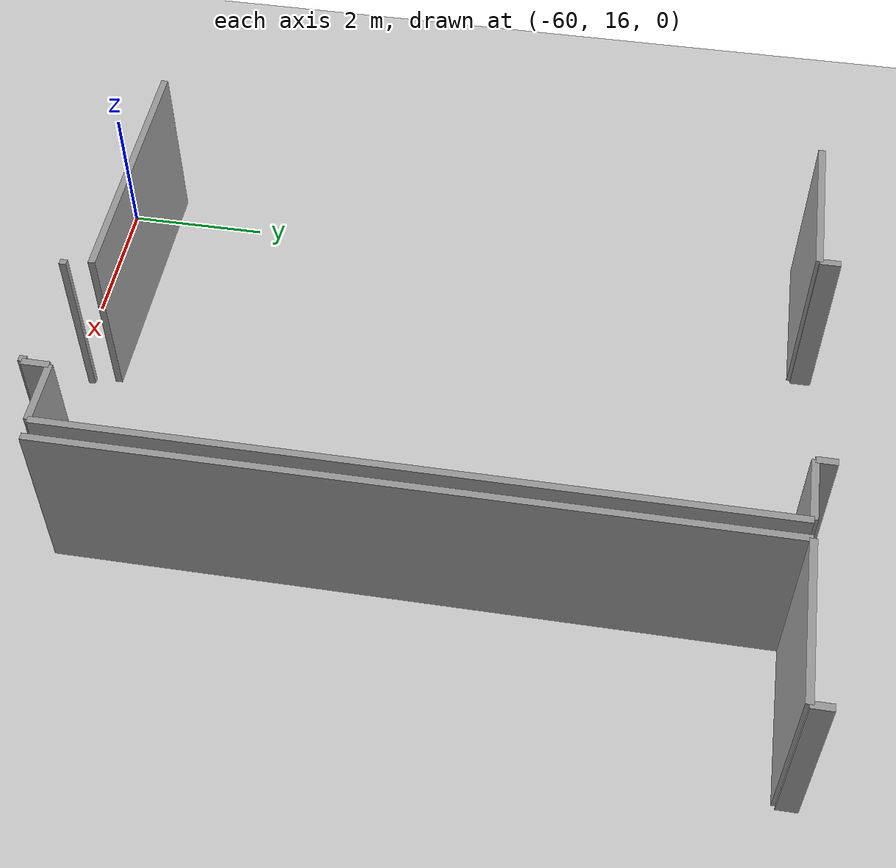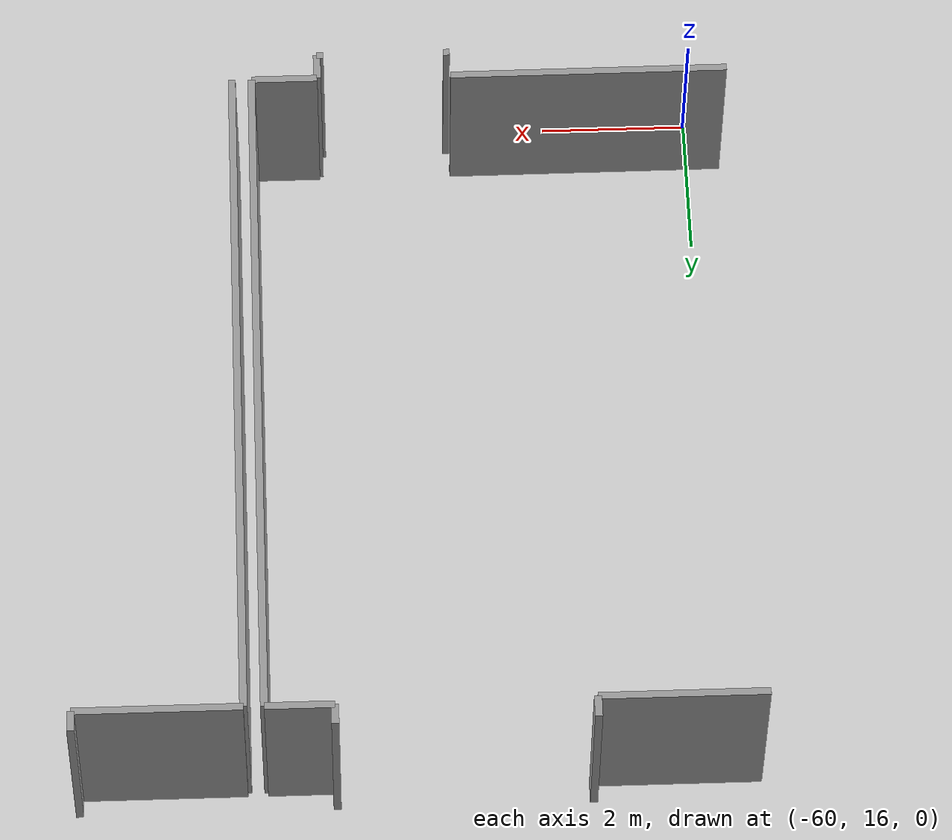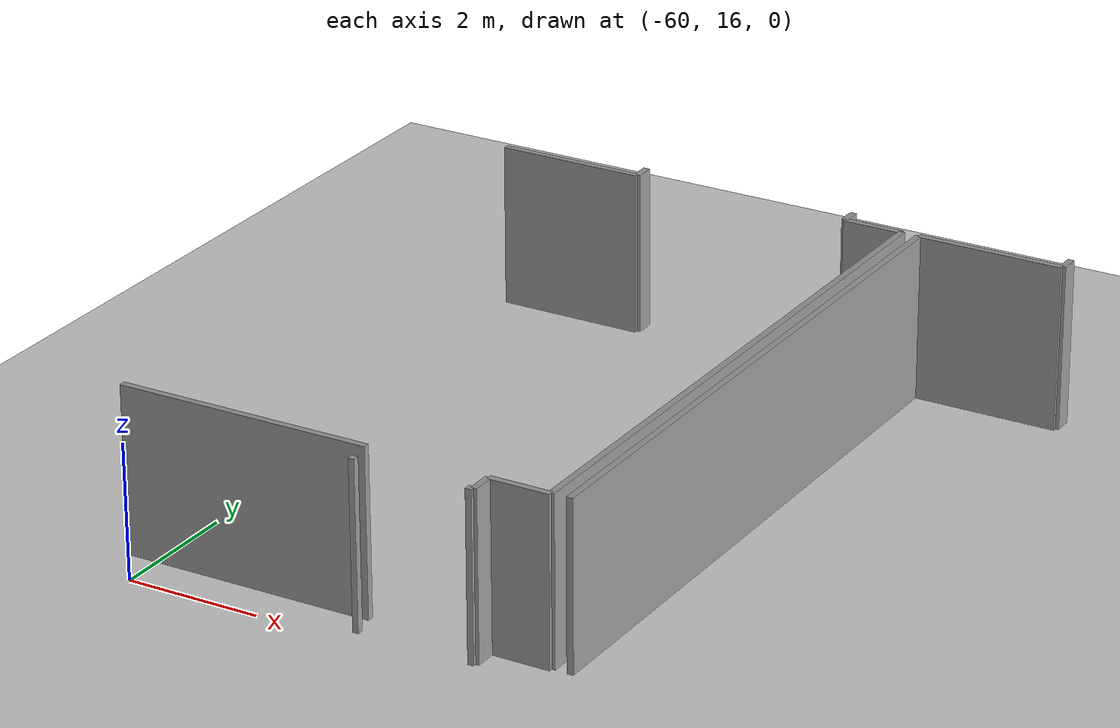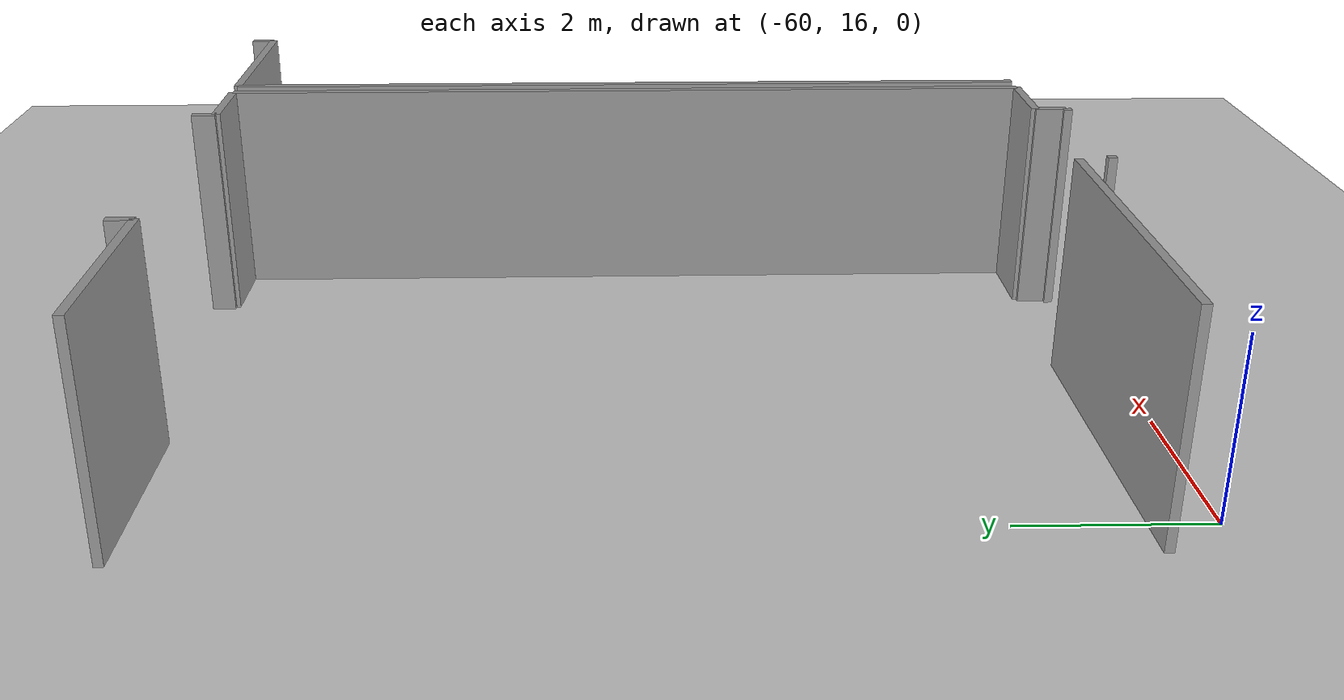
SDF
<sdf version="1.6">
 <world name="default">
  <model name="ground_plane">
   <static>1</static>
   <link name="link">
    <collision name="collision">
     <geometry><plane><normal>0 0 1</normal><size>100 100</size></plane></geometry>
     <surface><friction><ode><mu>100</mu><mu2>50</mu2></ode></friction></surface>
    </collision>
    <visual name="visual">
     <cast_shadows>0</cast_shadows>
     <geometry><plane><normal>0 0 1</normal><size>100 100</size></plane></geometry>
     <material>
      <script><uri>file://media/materials/scripts/gazebo.material</uri><name>Gazebo/Grey</name></script>
     </material>
    </visual>
   </link>
  </model>
  <model name="0510032192_A_40_1_103">
   <static>1</static>
   <link name="Wall_1">
    <collision name="Wall_1_Collision">
     <geometry><box><size>2.24219633352 0.1 2.5</size></box></geometry>
     <pose>1.12109816676 0 1.25 0 0 0</pose>
    </collision>
    <visual name="Wall_1_Visual">
     <pose>1.12109816676 0 1.25 0 0 0</pose>
     <geometry><box><size>2.24219633352 0.1 2.5</size></box></geometry>
     <material>
      <script><uri>file://media/materials/scripts/gazebo.material</uri><name>Gazebo/Grey</name></script>
      <ambient>1 1 1 1</ambient>
     </material>
    </visual>
    <pose>7.03149416234 -0.318879981706 0 0 0 0.0</pose>
   </link>
   <link name="Wall_2">
    <collision name="Wall_2_Collision">
     <geometry><box><size>0.290549210423 0.1 2.5</size></box></geometry>
     <pose>0.145274605211 0 1.25 0 0 0</pose>
    </collision>
    <visual name="Wall_2_Visual">
     <pose>0.145274605211 0 1.25 0 0 0</pose>
     <geometry><box><size>0.290549210423 0.1 2.5</size></box></geometry>
     <material>
      <script><uri>file://media/materials/scripts/gazebo.material</uri><name>Gazebo/Grey</name></script>
      <ambient>1 1 1 1</ambient>
     </material>
    </visual>
    <pose>9.27369049585 -0.318879981706 0 0 0 1.57079632679</pose>
   </link>
   <link name="Wall_3">
    <collision name="Wall_3_Collision">
     <geometry><box><size>0.278861179221 0.1 2.5</size></box></geometry>
     <pose>0.13943058961 0 1.25 0 0 0</pose>
    </collision>
    <visual name="Wall_3_Visual">
     <pose>0.13943058961 0 1.25 0 0 0</pose>
     <geometry><box><size>0.278861179221 0.1 2.5</size></box></geometry>
     <material>
      <script><uri>file://media/materials/scripts/gazebo.material</uri><name>Gazebo/Grey</name></script>
      <ambient>1 1 1 1</ambient>
     </material>
    </visual>
    <pose>12.6765591452 -0.028330771283 0 0 0 -1.57079632679</pose>
   </link>
   <link name="Wall_4">
    <collision name="Wall_4_Collision">
     <geometry><box><size>0.913826178649 0.1 2.5</size></box></geometry>
     <pose>0.456913089325 0 1.25 0 0 0</pose>
    </collision>
    <visual name="Wall_4_Visual">
     <pose>0.456913089325 0 1.25 0 0 0</pose>
     <geometry><box><size>0.913826178649 0.1 2.5</size></box></geometry>
     <material>
      <script><uri>file://media/materials/scripts/gazebo.material</uri><name>Gazebo/Grey</name></script>
      <ambient>1 1 1 1</ambient>
     </material>
    </visual>
    <pose>12.6765591452 -0.307191950504 0 0 0 0.0</pose>
   </link>
   <link name="Wall_5">
    <collision name="Wall_5_Collision">
     <geometry><box><size>9.72431491621 0.1 2.5</size></box></geometry>
     <pose>4.86215745811 0 1.25 0 0 0</pose>
    </collision>
    <visual name="Wall_5_Visual">
     <pose>4.86215745811 0 1.25 0 0 0</pose>
     <geometry><box><size>9.72431491621 0.1 2.5</size></box></geometry>
     <material>
      <script><uri>file://media/materials/scripts/gazebo.material</uri><name>Gazebo/Grey</name></script>
      <ambient>1 1 1 1</ambient>
     </material>
    </visual>
    <pose>13.5903853239 -0.307191950504 0 0 0 -1.57079632679</pose>
   </link>
   <link name="Wall_6">
    <collision name="Wall_6_Collision">
     <geometry><box><size>0.908744425953 0.1 2.5</size></box></geometry>
     <pose>0.454372212976 0 1.25 0 0 0</pose>
    </collision>
    <visual name="Wall_6_Visual">
     <pose>0.454372212976 0 1.25 0 0 0</pose>
     <geometry><box><size>0.908744425953 0.1 2.5</size></box></geometry>
     <material>
      <script><uri>file://media/materials/scripts/gazebo.material</uri><name>Gazebo/Grey</name></script>
      <ambient>1 1 1 1</ambient>
     </material>
    </visual>
    <pose>13.5903853239 -10.0315068667 0 0 0 3.14159265359</pose>
   </link>
   <link name="Wall_7">
    <collision name="Wall_7_Collision">
     <geometry><box><size>0.373762910828 0.1 2.5</size></box></geometry>
     <pose>0.186881455414 0 1.25 0 0 0</pose>
    </collision>
    <visual name="Wall_7_Visual">
     <pose>0.186881455414 0 1.25 0 0 0</pose>
     <geometry><box><size>0.373762910828 0.1 2.5</size></box></geometry>
     <material>
      <script><uri>file://media/materials/scripts/gazebo.material</uri><name>Gazebo/Grey</name></script>
      <ambient>1 1 1 1</ambient>
     </material>
    </visual>
    <pose>12.6816408979 -10.0315068667 0 0 0 -1.57079632679</pose>
   </link>
   <link name="Wall_8">
    <collision name="Wall_8_Collision">
     <geometry><box><size>0.0913445047197 0.1 2.5</size></box></geometry>
     <pose>0.0456722523598 0 1.25 0 0 0</pose>
    </collision>
    <visual name="Wall_8_Visual">
     <pose>0.0456722523598 0 1.25 0 0 0</pose>
     <geometry><box><size>0.0913445047197 0.1 2.5</size></box></geometry>
     <material>
      <script><uri>file://media/materials/scripts/gazebo.material</uri><name>Gazebo/Grey</name></script>
      <ambient>1 1 1 1</ambient>
     </material>
    </visual>
    <pose>12.6816408979 -10.4052697775 0 0 0 3.14159265359</pose>
   </link>
   <link name="Wall_9">
    <collision name="Wall_9_Collision">
     <geometry><box><size>0.0877872778321 0.1 2.5</size></box></geometry>
     <pose>0.0438936389161 0 1.25 0 0 0</pose>
    </collision>
    <visual name="Wall_9_Visual">
     <pose>0.0438936389161 0 1.25 0 0 0</pose>
     <geometry><box><size>0.0877872778321 0.1 2.5</size></box></geometry>
     <material>
      <script><uri>file://media/materials/scripts/gazebo.material</uri><name>Gazebo/Grey</name></script>
      <ambient>1 1 1 1</ambient>
     </material>
    </visual>
    <pose>10.9331368389 -10.4052697775 0 0 0 3.14159265359</pose>
   </link>
   <link name="Wall_11">
    <collision name="Wall_11_Collision">
     <geometry><box><size>3.81386928169 0.1 2.5</size></box></geometry>
     <pose>1.90693464084 0 1.25 0 0 0</pose>
    </collision>
    <visual name="Wall_11_Visual">
     <pose>1.90693464084 0 1.25 0 0 0</pose>
     <geometry><box><size>3.81386928169 0.1 2.5</size></box></geometry>
     <material>
      <script><uri>file://media/materials/scripts/gazebo.material</uri><name>Gazebo/Grey</name></script>
      <ambient>1 1 1 1</ambient>
     </material>
    </visual>
    <pose>10.8453495611 -10.0254087635 0 0 0 -3.13889445894</pose>
   </link>
   <link name="Wall_24">
    <collision name="Wall_24_Collision">
     <geometry><box><size>9.72469604767 0.1 2.5</size></box></geometry>
     <pose>4.86234802383 0 1.25 0 0 0</pose>
    </collision>
    <visual name="Wall_24_Visual">
     <pose>4.86234802383 0 1.25 0 0 0</pose>
     <geometry><box><size>9.72469604767 0.1 2.5</size></box></geometry>
     <material>
      <script><uri>file://media/materials/scripts/gazebo.material</uri><name>Gazebo/Grey</name></script>
      <ambient>1 1 1 1</ambient>
     </material>
    </visual>
    <pose>13.8593370854 -10.033412524 0 0 0 1.57079632679</pose>
   </link>
   <link name="Wall_25">
    <collision name="Wall_25_Collision">
     <geometry><box><size>2.23152465285 0.1 2.5</size></box></geometry>
     <pose>1.11576232643 0 1.25 0 0 0</pose>
    </collision>
    <visual name="Wall_25_Visual">
     <pose>1.11576232643 0 1.25 0 0 0</pose>
     <geometry><box><size>2.23152465285 0.1 2.5</size></box></geometry>
     <material>
      <script><uri>file://media/materials/scripts/gazebo.material</uri><name>Gazebo/Grey</name></script>
      <ambient>1 1 1 1</ambient>
     </material>
    </visual>
    <pose>13.8593370854 -0.308716476313 0 0 0 0.0</pose>
   </link>
   <link name="Wall_26">
    <collision name="Wall_26_Collision">
     <geometry><box><size>0.28330771283 0.1 2.5</size></box></geometry>
     <pose>0.141653856415 0 1.25 0 0 0</pose>
    </collision>
    <visual name="Wall_26_Visual">
     <pose>0.141653856415 0 1.25 0 0 0</pose>
     <geometry><box><size>0.28330771283 0.1 2.5</size></box></geometry>
     <material>
      <script><uri>file://media/materials/scripts/gazebo.material</uri><name>Gazebo/Grey</name></script>
      <ambient>1 1 1 1</ambient>
     </material>
    </visual>
    <pose>16.0908617382 -0.308716476313 0 0 0 1.57079632679</pose>
   </link>
   <pose>-67.5 26.6902360474 0 0 0 0</pose>
  </model>
 </world>
</sdf>
